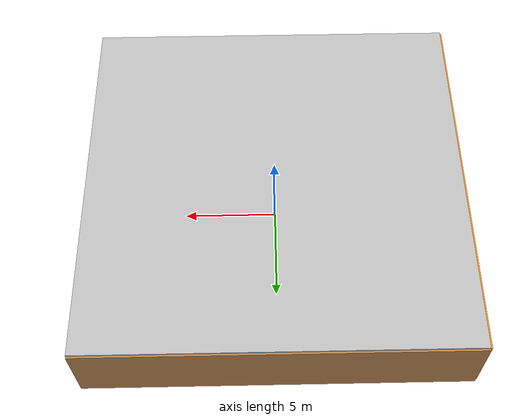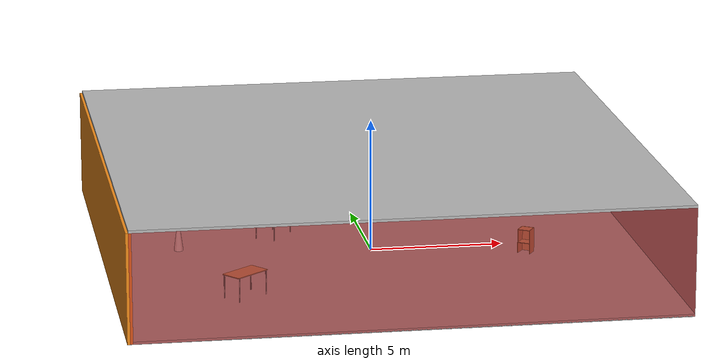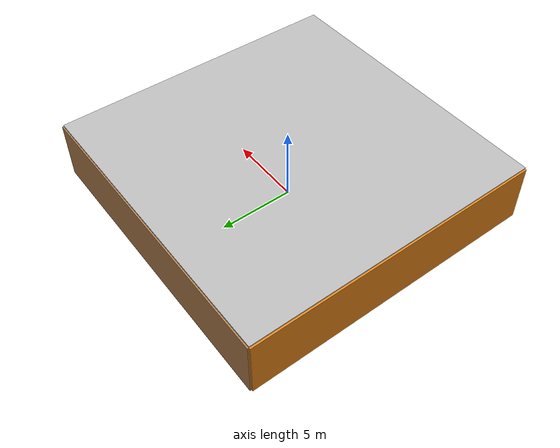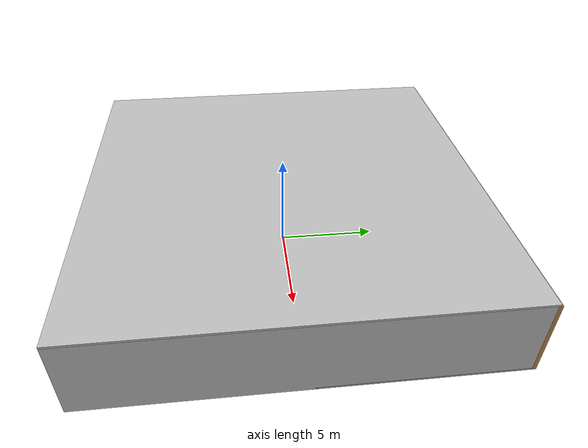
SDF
<sdf version="1.4">
 <world name="default">
  <physics type="ode">
   <max_step_size>0.001</max_step_size>
   <real_time_factor>1</real_time_factor>
   <real_time_update_rate>1000</real_time_update_rate>
   <gravity>0 0 -9.8</gravity>
  </physics>
  <scene><ambient>0.4 0.4 0.4 1</ambient><background>0.7 0.7 0.7 1</background><shadows>1</shadows></scene>
  <model name="Surrounding">
   <static>1</static>
   <link name="Ceiling">
    <collision name="Ceiling_Collision"><geometry><box><size>20 20 0.1</size></box></geometry></collision>
    <visual name="Ceiling_Visual">
     <geometry><box><size>20 20 0.1</size></box></geometry>
     <material>
      <script><uri>file://media/materials/scripts/gazebo.material</uri><name>Gazebo/CloudySky</name></script>
     </material>
    </visual>
    <pose>0 0 4.05 0 0 0</pose>
   </link>
   <link name="Wall_South">
    <collision name="Wall_South_Collision">
     <geometry><box><size>20 0 4</size></box></geometry>
     <pose>0 0 2 0 -0 0</pose>
    </collision>
    <visual name="Wall_South_Visual">
     <pose>0 0 2 0 -0 0</pose>
     <geometry><box><size>20 0 4</size></box></geometry>
     <material>
      <script><uri>file://media/materials/scripts/gazebo.material</uri><name>Gazebo/RedTransparent</name></script>
     </material>
    </visual>
    <velocity_decay><linear>0</linear><angular>0</angular></velocity_decay>
    <pose>0 -10 0 0 -0 0</pose>
   </link>
   <link name="Wall_East">
    <collision name="Wall_21_Collision">
     <geometry><box><size>20 0 4</size></box></geometry>
     <pose>0 0 2 0 -0 0</pose>
    </collision>
    <visual name="Wall_21_Visual">
     <pose>0 0 2 0 -0 0</pose>
     <geometry><box><size>20 0 4</size></box></geometry>
     <material>
      <script><uri>file://media/materials/scripts/gazebo.material</uri><name>Gazebo/LightOn</name></script>
     </material>
    </visual>
    <velocity_decay><linear>0</linear><angular>0</angular></velocity_decay>
    <pose>10 0 0 0 -0 1.5708</pose>
   </link>
   <link name="Wall_North">
    <collision name="Wall_22_Collision">
     <geometry><box><size>20 0.2 4</size></box></geometry>
     <pose>0 0 2 0 -0 0</pose>
    </collision>
    <visual name="Wall_22_Visual">
     <pose>0 0 2 0 -0 0</pose>
     <geometry><box><size>20 0.2 4</size></box></geometry>
     <material>
      <script><uri>file://media/materials/scripts/gazebo.material</uri><name>Gazebo/WoodPallet</name></script>
     </material>
    </visual>
    <velocity_decay><linear>0</linear><angular>0</angular></velocity_decay>
    <pose>0 10 0 0 -0 0</pose>
   </link>
   <link name="Wall_West">
    <collision name="Wall_23_Collision">
     <geometry><box><size>20 0.2 4</size></box></geometry>
     <pose>0 0 2 0 -0 0</pose>
    </collision>
    <visual name="Wall_23_Visual">
     <pose>0 0 2 0 -0 0</pose>
     <geometry><box><size>20 0.2 4</size></box></geometry>
     <material>
      <script><uri>file://media/materials/scripts/gazebo.material</uri><name>Gazebo/Orange</name></script>
     </material>
    </visual>
    <velocity_decay><linear>0</linear><angular>0</angular></velocity_decay>
    <pose>-10 0 0 0 0 -1.5708</pose>
   </link>
   <link name="Ground_link">
    <collision name="collision">
     <pose>0 0 .05 0 -0 0</pose>
     <geometry><box><size>20 20 0.1</size></box></geometry>
    </collision>
    <visual name="visual">
     <pose>0 0 .05 0 -0 0</pose>
     <geometry><box><size>20 20 0.1</size></box></geometry>
     <material>
      <script><uri>file://media/materials/scripts/gazebo.material</uri><name>Gazebo/GreyGradientSky</name></script>
     </material>
    </visual>
   </link>
   <static>1</static>
  </model>
  <spherical_coordinates>
   <surface_model>EARTH_WGS84</surface_model>
   <latitude_deg>0</latitude_deg>
   <longitude_deg>0</longitude_deg>
   <elevation>0</elevation>
   <heading_deg>0</heading_deg>
  </spherical_coordinates>
  <light name="lightball_0" type="diffuse">
   <diffuse>0.8 0.8 0.8 1</diffuse>
   <specular>0.2 0.2 0.2 1</specular>
   <attenuation>
    <range>100</range>
    <constant>0.7</constant>
    <linear>0.01</linear>
    <quadratic>0.001</quadratic>
   </attenuation>
   <direction>-0.5 0.1 -0.9</direction>
   <pose>0.500854424615 2.53039061406 1.56479714451 0 0 0</pose>
  </light>
  <light name="lightball_1" type="diffuse">
   <diffuse>0.8 0.8 0.8 1</diffuse>
   <specular>0.2 0.2 0.2 1</specular>
   <attenuation>
    <range>100</range>
    <constant>0.7</constant>
    <linear>0.01</linear>
    <quadratic>0.001</quadratic>
   </attenuation>
   <direction>-0.5 0.1 -0.9</direction>
   <pose>-8.06606325387 -5.11864497131 2.29003471871 0 0 0</pose>
  </light>
  <light name="lightball_2" type="diffuse">
   <diffuse>0.8 0.8 0.8 1</diffuse>
   <specular>0.2 0.2 0.2 1</specular>
   <attenuation>
    <range>100</range>
    <constant>0.7</constant>
    <linear>0.01</linear>
    <quadratic>0.001</quadratic>
   </attenuation>
   <direction>-0.5 0.1 -0.9</direction>
   <pose>4.01472529003 -8.15728625308 2.09662447257 0 0 0</pose>
  </light>
  <light name="lightball_3" type="diffuse">
   <diffuse>0.8 0.8 0.8 1</diffuse>
   <specular>0.2 0.2 0.2 1</specular>
   <attenuation>
    <range>100</range>
    <constant>0.7</constant>
    <linear>0.01</linear>
    <quadratic>0.001</quadratic>
   </attenuation>
   <direction>-0.5 0.1 -0.9</direction>
   <pose>-3.98568654038 9.82661776695 2.80107507221 0 0 0</pose>
  </light>
  <light name="lightball_4" type="diffuse">
   <diffuse>0.8 0.8 0.8 1</diffuse>
   <specular>0.2 0.2 0.2 1</specular>
   <attenuation>
    <range>100</range>
    <constant>0.7</constant>
    <linear>0.01</linear>
    <quadratic>0.001</quadratic>
   </attenuation>
   <direction>-0.5 0.1 -0.9</direction>
   <pose>-4.16189940521 7.63138668288 3.39235433186 0 0 0</pose>
  </light>
  <include>
   <uri>model://construction_cone</uri>
   <pose>-7.19682563023 0.720842225959 0 0 0 0.522911542607</pose>
  </include>
  <include><uri>model://table</uri><pose>-5.43060880167 -5.36848373956 0 0 0 0.678788720258</pose></include>
  <include><uri>model://table</uri><pose>-3.42086284797 2.1478933398 0 0 0 0.967826967037</pose></include>
  <include><uri>model://cabinet</uri><pose>-3.97299368463 4.33729878642 0 0 0 1.95233319566</pose></include>
  <include><uri>model://cabinet</uri><pose>-3.64244415399 7.04196710818 0 0 0 1.68685391732</pose></include>
  <include><uri>model://table</uri><pose>2.5214500788 6.45897372347 0 0 0 0.0722871809266</pose></include>
  <include><uri>model://cabinet</uri><pose>5.62493380765 -1.57000441605 0 0 0 0.989561973222</pose></include>
 </world>
</sdf>

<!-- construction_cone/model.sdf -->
<sdf version="1.5">
  <model name="Construction Cone">
    <link name="link">
      <collision name="collision">
        <geometry>
          <mesh>
            <scale>10 10 10</scale>
            <uri>file://isr-testbed/construction_cone/meshes/construction_cone.dae</uri>
          </mesh>
        </geometry>
      </collision>
      <visual name="visual">
        <geometry>
          <mesh>
            <scale>10 10 10</scale>
            <uri>file://isr-testbed/construction_cone/meshes/construction_cone.dae</uri>
          </mesh>
        </geometry>
      </visual>
    </link>
  </model>
</sdf>

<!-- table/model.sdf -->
<sdf version="1.5">
  <model name="table">
    <static>true</static>
    <link name="link">
      <collision name="surface">
        <pose>0 0 1.0 0 0 0</pose>
        <geometry>
          <box>
            <size>1.5 0.8 0.03</size>
          </box>
        </geometry>
        <surface>
          <friction>
            <ode>
              <mu>0.6</mu>
              <mu2>0.6</mu2>
            </ode>
          </friction>
        </surface>
      </collision>
      <visual name="visual1">
        <pose>0 0 1.0 0 0 0</pose>
        <geometry>
          <box>
            <size>1.5 0.8 0.03</size>
          </box>
        </geometry>
        <material>
          <script>
            <uri>model://media/materials/scripts/gazebo.material</uri>
            <name>Gazebo/Wood</name>
          </script>
        </material>
      </visual>
      <collision name="front_left_leg">
        <pose>0.68 0.38 0.5 0 0 0</pose>
        <geometry>
          <cylinder>
            <radius>0.02</radius>
            <length>1.0</length>
          </cylinder>
        </geometry>
      </collision>
      <visual name="front_left_leg">
        <pose>0.68 0.38 0.5 0 0 0</pose>
        <geometry>
          <cylinder>
            <radius>0.02</radius>
            <length>1.0</length>
          </cylinder>
        </geometry>
        <material>
          <script>
            <uri>model://media/materials/scripts/gazebo.material</uri>
            <name>Gazebo/Grey</name>
          </script>
        </material>
      </visual>
      <collision name="front_right_leg">
        <pose>0.68 -0.38 0.5 0 0 0</pose>
        <geometry>
          <cylinder>
            <radius>0.02</radius>
            <length>1.0</length>
          </cylinder>
        </geometry>
      </collision>
      <visual name="front_right_leg">
        <pose>0.68 -0.38 0.5 0 0 0</pose>
        <geometry>
          <cylinder>
            <radius>0.02</radius>
            <length>1.0</length>
          </cylinder>
        </geometry>
        <material>
          <script>
            <uri>model://media/materials/scripts/gazebo.material</uri>
            <name>Gazebo/Grey</name>
          </script>
        </material>
      </visual>
      <collision name="back_right_leg">
        <pose>-0.68 -0.38 0.5 0 0 0</pose>
        <geometry>
          <cylinder>
            <radius>0.02</radius>
            <length>1.0</length>
          </cylinder>
        </geometry>
      </collision>
      <visual name="back_right_leg">
        <pose>-0.68 -0.38 0.5 0 0 0</pose>
        <geometry>
          <cylinder>
            <radius>0.02</radius>
            <length>1.0</length>
          </cylinder>
        </geometry>
        <material>
          <script>
            <uri>model://media/materials/scripts/gazebo.material</uri>
            <name>Gazebo/Grey</name>
          </script>
        </material>
      </visual>
      <collision name="back_left_leg">
        <pose>-0.68 0.38 0.5 0 0 0</pose>
        <geometry>
          <cylinder>
            <radius>0.02</radius>
            <length>1.0</length>
          </cylinder>
        </geometry>
      </collision>
      <visual name="back_left_leg">
        <pose>-0.68 0.38 0.5 0 0 0</pose>
        <geometry>
          <cylinder>
            <radius>0.02</radius>
            <length>1.0</length>
          </cylinder>
        </geometry>
        <material>
          <script>
            <uri>model://media/materials/scripts/gazebo.material</uri>
            <name>Gazebo/Grey</name>
          </script>
        </material>
      </visual>
    </link>
  </model>
</sdf>

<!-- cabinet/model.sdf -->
<sdf version="1.5">
  <model name="cabinet">
    <static>true</static>
    <link name="cabinet_bottom_plate">
      <inertial>
        <pose>0 0 -1 0 0 0</pose>
        <inertia>
          <ixx>2.050000</ixx>
          <ixy>0</ixy>
          <ixz>0</ixz>
          <iyy>2.050000</iyy>
          <iyz>0</iyz>
          <izz>2.050000</izz>
        </inertia>
        <mass>25.000000</mass>
      </inertial>
      <collision name="cabinet_bottom_plate_geom">
        <pose>0 0 0.010000 0 0 0</pose>
        <geometry>
          <box>
            <size>0.450000 0.450000 0.020000</size>
          </box>
        </geometry>
      </collision>
      <visual name="cabinet_bottom_plate_geom_visual">
        <pose>0 0 0.010000 0 0 0</pose>
        <geometry>
          <box>
            <size>0.450000 0.450000 0.020000</size>
          </box>
        </geometry>
        <material>
          <script>
            <uri>model://media/materials/scripts/gazebo.material</uri>
            <name>Gazebo/Wood</name>
          </script>
        </material>
      </visual>
      <collision name="cabinet_bottom_plate_geom_cabinet_back_plate">
        <pose>0.235000 0 0.510000 0 0 0</pose>
        <geometry>
          <box>
            <size>0.020000 0.450000 1.020000</size>
          </box>
        </geometry>
      </collision>
      <visual name="cabinet_bottom_plate_geom_cabinet_back_plate_visual">
        <pose>0.235000 0 0.510000 0 0 0</pose>
        <geometry>
          <box>
            <size>0.020000 0.450000 1.020000</size>
          </box>
        </geometry>
        <material>
          <script>
            <uri>model://media/materials/scripts/gazebo.material</uri>
            <name>Gazebo/Wood</name>
          </script>
        </material>
      </visual>
      <collision name="cabinet_bottom_plate_geom_cabinet_left_plate">
        <pose>0 0.235000 0.510000 0 0 0</pose>
        <geometry>
          <box>
            <size>0.450000 0.020000 1.020000</size>
          </box>
        </geometry>
      </collision>
      <visual name="cabinet_bottom_plate_geom_cabinet_left_plate_visual">
        <pose>0 0.235000 0.510000 0 0 0</pose>
        <geometry>
          <box>
            <size>0.450000 0.020000 1.020000</size>
          </box>
        </geometry>
        <material>
          <script>
            <uri>model://media/materials/scripts/gazebo.material</uri>
            <name>Gazebo/Wood</name>
          </script>
        </material>
      </visual>
      <collision name="cabinet_bottom_plate_geom_cabinet_middle_plate">
        <pose>0 0 0.510000 0 0 0</pose>
        <geometry>
          <box>
            <size>0.450000 0.450000 0.020000</size>
          </box>
        </geometry>
      </collision>
      <visual name="cabinet_bottom_plate_geom_cabinet_middle_plate_visual">
        <pose>0 0 0.510000 0 0 0</pose>
        <geometry>
          <box>
            <size>0.450000 0.450000 0.020000</size>
          </box>
        </geometry>
        <material>
          <script>
            <uri>model://media/materials/scripts/gazebo.material</uri>
            <name>Gazebo/Wood</name>
          </script>
        </material>
      </visual>
      <collision name="cabinet_bottom_plate_geom_cabinet_right_plate">
        <pose>0 -0.235000 0.510000 0 0 0</pose>
        <geometry>
          <box>
            <size>0.450000 0.020000 1.020000</size>
          </box>
        </geometry>
      </collision>
      <visual name="cabinet_bottom_plate_geom_cabinet_right_plate_visual">
        <pose>0 -0.235000 0.510000 0 0 0</pose>
        <geometry>
          <box>
            <size>0.450000 0.020000 1.020000</size>
          </box>
        </geometry>
        <material>
          <script>
            <uri>model://media/materials/scripts/gazebo.material</uri>
            <name>Gazebo/Wood</name>
          </script>
        </material>
      </visual>
      <collision name="cabinet_bottom_plate_geom_cabinet_top_plate">
        <pose>0 0 1.010000 0 0 0</pose>
        <geometry>
          <box>
            <size>0.450000 0.450000 0.020000</size>
          </box>
        </geometry>
      </collision>
      <visual name="cabinet_bottom_plate_geom_cabinet_top_plate_visual">
        <pose>0 0 1.010000 0 0 0</pose>
        <geometry>
          <box>
            <size>0.450000 0.450000 0.020000</size>
          </box>
        </geometry>
        <material>
          <script>
            <uri>model://media/materials/scripts/gazebo.material</uri>
            <name>Gazebo/Wood</name>
          </script>
        </material>
      </visual>
    </link>
  </model>
</sdf>
